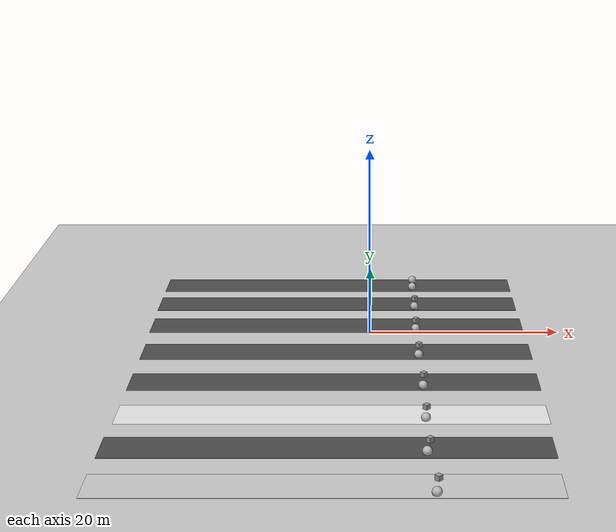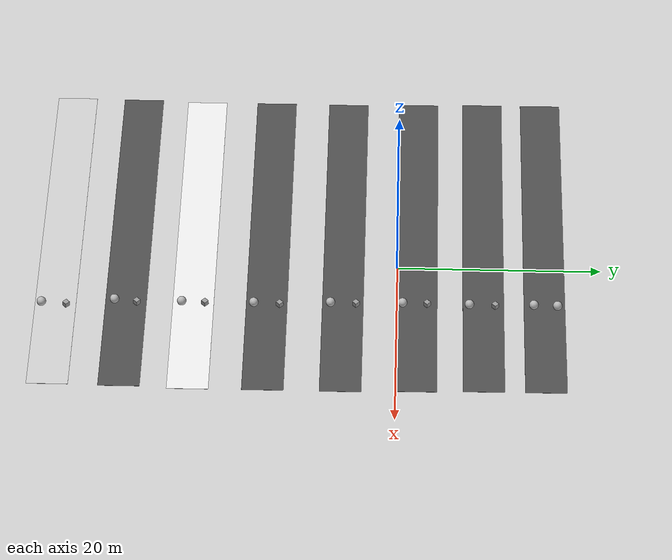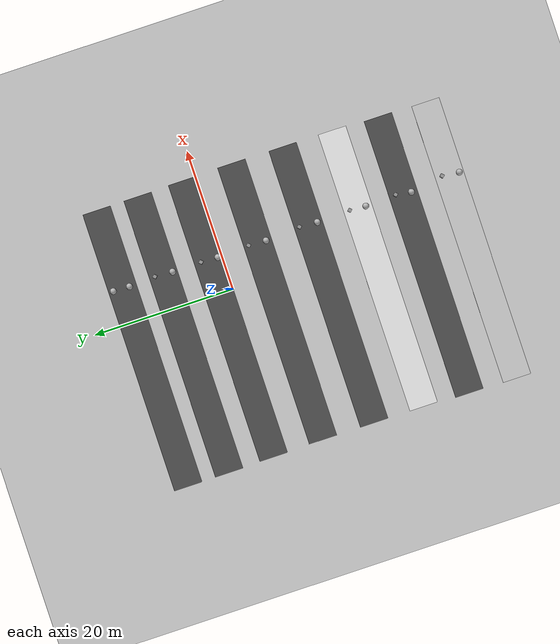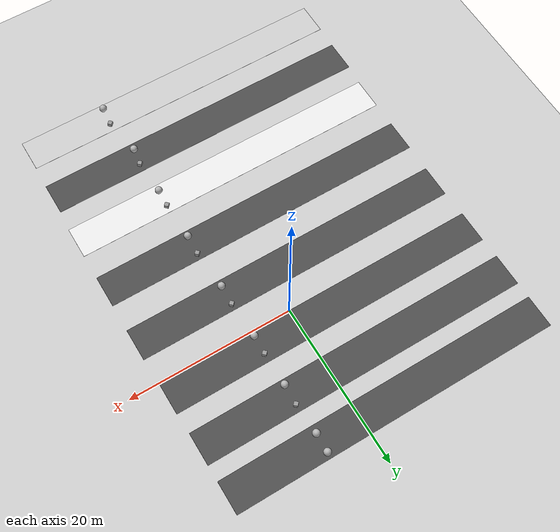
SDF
<sdf version="1.6">
 <world name="default">
  <light name="sun" type="directional">
   <pose>0 0 10 0 -0 0</pose>
   <diffuse>0.8 0.8 0.8 1</diffuse>
   <specular>0.2 0.2 0.2 1</specular>
   <attenuation>
    <range>1000</range>
    <constant>0.9</constant>
    <linear>0.01</linear>
    <quadratic>0.001</quadratic>
   </attenuation>
   <direction>-0.5 0.1 -0.9</direction>
  </light>
  <model name="ground_plane">
   <static>1</static>
   <link name="link">
    <collision name="collision">
     <geometry><plane><normal>0 0 1</normal><size>100 100</size></plane></geometry>
     <surface>
      <contact><collide_bitmask>65535</collide_bitmask></contact>
      <friction><ode><mu>100</mu><mu2>50</mu2></ode></friction>
     </surface>
    </collision>
    <visual name="visual">
     <cast_shadows>0</cast_shadows>
     <geometry><plane><normal>0 0 1</normal><size>100 100</size></plane></geometry>
     <material>
      <script><uri>file://media/materials/scripts/gazebo.material</uri><name>Gazebo/Grey</name></script>
     </material>
    </visual>
   </link>
  </model>
  <gravity>0 0 -9.8</gravity>
  <magnetic_field>6e-06 2.3e-05 -4.2e-05</magnetic_field>
  <atmosphere type="adiabatic"/>
  <physics name="default_physics" default="0" type="ode">
   <max_step_size>0.001</max_step_size>
   <real_time_factor>1</real_time_factor>
   <real_time_update_rate>1000</real_time_update_rate>
  </physics>
  <scene><ambient>0.4 0.4 0.4 1</ambient><background>0.7 0.7 0.7 1</background><shadows>1</shadows></scene>
  <spherical_coordinates>
   <surface_model>EARTH_WGS84</surface_model>
   <latitude_deg>0</latitude_deg>
   <longitude_deg>0</longitude_deg>
   <elevation>0</elevation>
   <heading_deg>0</heading_deg>
  </spherical_coordinates>
  <model name="road_dashed_two_white">
   <static>1</static>
   <link name="link">
    <collision name="collision"><geometry><box><size>40 4 0.02</size></box></geometry></collision>
    <visual name="visual">
     <cast_shadows>0</cast_shadows>
     <geometry><box><size>40 4 0.02</size></box></geometry>
     <material>
      <script>
       <uri>model://road_dashed_two_white/materials/scripts</uri>
       <uri>model://road_dashed_two_white/materials/textures</uri>
       <name>DashedTwoWhite</name>
      </script>
     </material>
    </visual>
   </link>
   <pose>-3.50925 -19.7999 0 0 -0 0</pose>
  </model>
  <model name="road_plain_white">
   <static>1</static>
   <link name="link">
    <collision name="collision"><geometry><box><size>40 4 0.02</size></box></geometry></collision>
    <visual name="visual">
     <cast_shadows>0</cast_shadows>
     <geometry><box><size>40 4 0.02</size></box></geometry>
     <material>
      <ambient>0.8 0.8 0.8 1</ambient>
      <diffuse>0.8 0.8 0.8 1</diffuse>
      <specular>0.1 0.1 0.1 1</specular>
      <emissive>0 0 0 0</emissive>
     </material>
    </visual>
   </link>
   <pose>-3.86037 -33.2192 0 0 -0 0</pose>
  </model>
  <model name="dirt_road">
   <static>1</static>
   <link name="link">
    <collision name="collision"><geometry><box><size>40 4 0.02</size></box></geometry></collision>
    <visual name="visual">
     <cast_shadows>0</cast_shadows>
     <geometry><box><size>40 4 0.02</size></box></geometry>
     <material>
      <script>
       <uri>model://two_stripe_road/materials/scripts</uri>
       <uri>model://two_stripe_road/materials/textures</uri>
       <name>TwoStripeRoad</name>
      </script>
     </material>
    </visual>
   </link>
   <pose>-3.74816 -26.3668 0 0 -0 0</pose>
  </model>
  <model name="road_light_gravel">
   <static>1</static>
   <link name="link">
    <collision name="collision"><geometry><box><size>40 4 0.02</size></box></geometry></collision>
    <visual name="visual">
     <cast_shadows>0</cast_shadows>
     <geometry><box><size>40 4 0.02</size></box></geometry>
     <material>
      <script>
       <uri>model://road_light_gravel/materials/scripts</uri>
       <uri>model://road_light_gravel/materials/textures</uri>
       <name>RoadLightGravel</name>
      </script>
     </material>
    </visual>
   </link>
   <pose>-3.61059 1.9679 0 0 -0 0</pose>
  </model>
  <model name="road_light_grid">
   <static>1</static>
   <link name="link">
    <collision name="collision"><geometry><box><size>40 4 0.02</size></box></geometry></collision>
    <visual name="visual">
     <cast_shadows>0</cast_shadows>
     <geometry><box><size>40 4 0.02</size></box></geometry>
     <material>
      <script>
       <uri>model://road_light_grid/materials/scripts</uri>
       <uri>model://road_light_grid/materials/textures</uri>
       <name>RoadLightGrid</name>
      </script>
     </material>
    </visual>
   </link>
   <pose>-3.51066 -12.6398 0 0 -0 0</pose>
  </model>
  <model name="road_light_tile">
   <static>1</static>
   <link name="link">
    <collision name="collision"><geometry><box><size>40 4 0.02</size></box></geometry></collision>
    <visual name="visual">
     <cast_shadows>0</cast_shadows>
     <geometry><box><size>40 4 0.02</size></box></geometry>
     <material>
      <script>
       <uri>model://road_light_tile/materials/scripts</uri>
       <uri>model://road_light_tile/materials/textures</uri>
       <name>RoadLightTile</name>
      </script>
     </material>
    </visual>
   </link>
   <pose>-3.47752 -5.22727 0 0 -0 0</pose>
  </model>
  <model name="road_aged_tile">
   <static>1</static>
   <link name="link">
    <collision name="collision"><geometry><box><size>40 4 0.02</size></box></geometry></collision>
    <visual name="visual">
     <cast_shadows>0</cast_shadows>
     <geometry><box><size>40 4 0.02</size></box></geometry>
     <material>
      <script>
       <uri>model://road_aged_tile/materials/scripts</uri>
       <uri>model://road_aged_tile/materials/textures</uri>
       <name>RoadAgedTile</name>
      </script>
     </material>
    </visual>
   </link>
   <pose>-3.72583 8.4555 0 0 -0 0</pose>
  </model>
  <model name="road_illusion_slab">
   <static>1</static>
   <link name="link">
    <collision name="collision"><geometry><box><size>40 4 0.02</size></box></geometry></collision>
    <visual name="visual">
     <cast_shadows>0</cast_shadows>
     <geometry><box><size>40 4 0.02</size></box></geometry>
     <material>
      <script>
       <uri>model://road_illusion_slab/materials/scripts</uri>
       <uri>model://road_illusion_slab/materials/textures</uri>
       <name>IllusionSlabRoad</name>
      </script>
     </material>
    </visual>
   </link>
   <pose>-3.7402 14.4033 0 0 -0 0</pose>
  </model>
  <model name="unit_box">
   <pose>4.88648 13.3779 0.26 0 -0 3e-06</pose>
   <link name="link">
    <inertial>
     <mass>1</mass>
     <inertia>
      <ixx>0.166667</ixx>
      <ixy>0</ixy>
      <ixz>0</ixz>
      <iyy>0.166667</iyy>
      <iyz>0</iyz>
      <izz>0.166667</izz>
     </inertia>
    </inertial>
    <collision name="collision"><geometry><box><size>0.5 0.5 0.5</size></box></geometry></collision>
    <visual name="visual">
     <geometry><box><size>0.5 0.5 0.5</size></box></geometry>
     <material>
      <script><name>Gazebo/Grey</name><uri>file://media/materials/scripts/gazebo.material</uri></script>
     </material>
    </visual>
    <visual name="visual_sphere_cue">
     <geometry><sphere><radius>0.45</radius></sphere></geometry>
     <plugin name="blink" filename="libBlinkVisualPlugin.so">
      <color_a>0 1 0 0.15</color_a>
      <color_b>0 1 0 0.15</color_b>
      <period>2</period>
      <use_wall_time>true</use_wall_time>
     </plugin>
     <material>
      <script><uri>file://media/materials/scripts/gazebo.material</uri><name>__default__</name></script>
     </material>
    </visual>
   </link>
  </model>
  <model name="unit_box_clone">
   <pose>4.94404 7.10779 0.26 0 -0 3e-06</pose>
   <link name="link">
    <inertial>
     <mass>1</mass>
     <inertia>
      <ixx>0.166667</ixx>
      <ixy>0</ixy>
      <ixz>0</ixz>
      <iyy>0.166667</iyy>
      <iyz>0</iyz>
      <izz>0.166667</izz>
     </inertia>
    </inertial>
    <collision name="collision"><geometry><box><size>0.5 0.5 0.5</size></box></geometry></collision>
    <visual name="visual">
     <geometry><box><size>0.5 0.5 0.5</size></box></geometry>
     <material>
      <script><name>Gazebo/Grey</name><uri>file://media/materials/scripts/gazebo.material</uri></script>
     </material>
    </visual>
    <visual name="visual_sphere_cue">
     <geometry><sphere><radius>0.45</radius></sphere></geometry>
     <plugin name="blink" filename="libBlinkVisualPlugin.so">
      <color_a>0 1 0 0.15</color_a>
      <color_b>0 1 0 0.15</color_b>
      <period>2</period>
      <use_wall_time>true</use_wall_time>
     </plugin>
     <material>
      <script><uri>file://media/materials/scripts/gazebo.material</uri><name>__default__</name></script>
     </material>
    </visual>
   </link>
  </model>
  <model name="unit_box_clone_0">
   <pose>4.87138 0.600374 0.26 0 -0 3e-06</pose>
   <link name="link">
    <inertial>
     <mass>1</mass>
     <inertia>
      <ixx>0.166667</ixx>
      <ixy>0</ixy>
      <ixz>0</ixz>
      <iyy>0.166667</iyy>
      <iyz>0</iyz>
      <izz>0.166667</izz>
     </inertia>
    </inertial>
    <collision name="collision"><geometry><box><size>0.5 0.5 0.5</size></box></geometry></collision>
    <visual name="visual">
     <geometry><box><size>0.5 0.5 0.5</size></box></geometry>
     <material>
      <script><name>Gazebo/Grey</name><uri>file://media/materials/scripts/gazebo.material</uri></script>
     </material>
    </visual>
    <visual name="visual_sphere_cue">
     <geometry><sphere><radius>0.45</radius></sphere></geometry>
     <plugin name="blink" filename="libBlinkVisualPlugin.so">
      <color_a>0 1 0 0.15</color_a>
      <color_b>0 1 0 0.15</color_b>
      <period>2</period>
      <use_wall_time>true</use_wall_time>
     </plugin>
     <material>
      <script><uri>file://media/materials/scripts/gazebo.material</uri><name>__default__</name></script>
     </material>
    </visual>
   </link>
  </model>
  <model name="unit_box_clone_1">
   <pose>4.96317 -6.43065 0.26 0 -0 3e-06</pose>
   <link name="link">
    <inertial>
     <mass>1</mass>
     <inertia>
      <ixx>0.166667</ixx>
      <ixy>0</ixy>
      <ixz>0</ixz>
      <iyy>0.166667</iyy>
      <iyz>0</iyz>
      <izz>0.166667</izz>
     </inertia>
    </inertial>
    <collision name="collision"><geometry><box><size>0.5 0.5 0.5</size></box></geometry></collision>
    <visual name="visual">
     <geometry><box><size>0.5 0.5 0.5</size></box></geometry>
     <material>
      <script><name>Gazebo/Grey</name><uri>file://media/materials/scripts/gazebo.material</uri></script>
     </material>
    </visual>
    <visual name="visual_sphere_cue">
     <geometry><sphere><radius>0.45</radius></sphere></geometry>
     <plugin name="blink" filename="libBlinkVisualPlugin.so">
      <color_a>0 1 0 0.15</color_a>
      <color_b>0 1 0 0.15</color_b>
      <period>2</period>
      <use_wall_time>true</use_wall_time>
     </plugin>
     <material>
      <script><uri>file://media/materials/scripts/gazebo.material</uri><name>__default__</name></script>
     </material>
    </visual>
   </link>
  </model>
  <model name="unit_box_clone_2">
   <pose>5.13767 -13.9041 0.26 0 -0 3e-06</pose>
   <link name="link">
    <inertial>
     <mass>1</mass>
     <inertia>
      <ixx>0.166667</ixx>
      <ixy>0</ixy>
      <ixz>0</ixz>
      <iyy>0.166667</iyy>
      <iyz>0</iyz>
      <izz>0.166667</izz>
     </inertia>
    </inertial>
    <collision name="collision"><geometry><box><size>0.5 0.5 0.5</size></box></geometry></collision>
    <visual name="visual">
     <geometry><box><size>0.5 0.5 0.5</size></box></geometry>
     <material>
      <script><name>Gazebo/Grey</name><uri>file://media/materials/scripts/gazebo.material</uri></script>
     </material>
    </visual>
    <visual name="visual_sphere_cue">
     <geometry><sphere><radius>0.45</radius></sphere></geometry>
     <plugin name="blink" filename="libBlinkVisualPlugin.so">
      <color_a>0 1 0 0.15</color_a>
      <color_b>0 1 0 0.15</color_b>
      <period>2</period>
      <use_wall_time>true</use_wall_time>
     </plugin>
     <material>
      <script><uri>file://media/materials/scripts/gazebo.material</uri><name>__default__</name></script>
     </material>
    </visual>
   </link>
  </model>
  <model name="unit_box_clone_3">
   <pose>5.12838 -20.923 0.26 0 -0 3e-06</pose>
   <link name="link">
    <inertial>
     <mass>1</mass>
     <inertia>
      <ixx>0.166667</ixx>
      <ixy>0</ixy>
      <ixz>0</ixz>
      <iyy>0.166667</iyy>
      <iyz>0</iyz>
      <izz>0.166667</izz>
     </inertia>
    </inertial>
    <collision name="collision"><geometry><box><size>0.5 0.5 0.5</size></box></geometry></collision>
    <visual name="visual">
     <geometry><box><size>0.5 0.5 0.5</size></box></geometry>
     <material>
      <script><name>Gazebo/Grey</name><uri>file://media/materials/scripts/gazebo.material</uri></script>
     </material>
    </visual>
    <visual name="visual_sphere_cue">
     <geometry><sphere><radius>0.45</radius></sphere></geometry>
     <plugin name="blink" filename="libBlinkVisualPlugin.so">
      <color_a>0 1 0 0.15</color_a>
      <color_b>0 1 0 0.15</color_b>
      <period>2</period>
      <use_wall_time>true</use_wall_time>
     </plugin>
     <material>
      <script><uri>file://media/materials/scripts/gazebo.material</uri><name>__default__</name></script>
     </material>
    </visual>
   </link>
  </model>
  <model name="unit_box_clone_4">
   <pose>4.98944 -27.4875 0.26 0 -0 3e-06</pose>
   <link name="link">
    <inertial>
     <mass>1</mass>
     <inertia>
      <ixx>0.166667</ixx>
      <ixy>0</ixy>
      <ixz>0</ixz>
      <iyy>0.166667</iyy>
      <iyz>0</iyz>
      <izz>0.166667</izz>
     </inertia>
    </inertial>
    <collision name="collision"><geometry><box><size>0.5 0.5 0.5</size></box></geometry></collision>
    <visual name="visual">
     <geometry><box><size>0.5 0.5 0.5</size></box></geometry>
     <material>
      <script><name>Gazebo/Grey</name><uri>file://media/materials/scripts/gazebo.material</uri></script>
     </material>
    </visual>
    <visual name="visual_sphere_cue">
     <geometry><sphere><radius>0.45</radius></sphere></geometry>
     <plugin name="blink" filename="libBlinkVisualPlugin.so">
      <color_a>0 1 0 0.15</color_a>
      <color_b>0 1 0 0.15</color_b>
      <period>2</period>
      <use_wall_time>true</use_wall_time>
     </plugin>
     <material>
      <script><uri>file://media/materials/scripts/gazebo.material</uri><name>__default__</name></script>
     </material>
    </visual>
   </link>
  </model>
  <model name="unit_box_clone_5">
   <pose>5.49429 -34.5866 0.26 0 -0 3e-06</pose>
   <link name="link">
    <inertial>
     <mass>1</mass>
     <inertia>
      <ixx>0.166667</ixx>
      <ixy>0</ixy>
      <ixz>0</ixz>
      <iyy>0.166667</iyy>
      <iyz>0</iyz>
      <izz>0.166667</izz>
     </inertia>
    </inertial>
    <collision name="collision"><geometry><box><size>0.5 0.5 0.5</size></box></geometry></collision>
    <visual name="visual">
     <geometry><box><size>0.5 0.5 0.5</size></box></geometry>
     <material>
      <script><name>Gazebo/Grey</name><uri>file://media/materials/scripts/gazebo.material</uri></script>
     </material>
    </visual>
    <visual name="visual_sphere_cue">
     <geometry><sphere><radius>0.45</radius></sphere></geometry>
     <plugin name="blink" filename="libBlinkVisualPlugin.so">
      <color_a>0 1 0 0.15</color_a>
      <color_b>0 1 0 0.15</color_b>
      <period>2</period>
      <use_wall_time>true</use_wall_time>
     </plugin>
     <material>
      <script><uri>file://media/materials/scripts/gazebo.material</uri><name>__default__</name></script>
     </material>
    </visual>
   </link>
  </model>
  <model name="unit_box_evil">
   <pose>5.74966 -32.1601 0.26 0 0 -0.801147</pose>
   <link name="link">
    <inertial>
     <mass>1</mass>
     <inertia>
      <ixx>0.166667</ixx>
      <ixy>0</ixy>
      <ixz>0</ixz>
      <iyy>0.166667</iyy>
      <iyz>0</iyz>
      <izz>0.166667</izz>
     </inertia>
    </inertial>
    <collision name="collision"><geometry><box><size>0.5 0.5 0.5</size></box></geometry></collision>
    <visual name="visual">
     <geometry><box><size>0.5 0.5 0.5</size></box></geometry>
     <material>
      <script><name>Gazebo/Grey</name><uri>file://media/materials/scripts/gazebo.material</uri></script>
     </material>
    </visual>
   </link>
   <plugin name="model_push" filename="libvisual_cue_plugin.so"/>
  </model>
  <model name="unit_box_clone_6">
   <pose>4.96093 15.6812 0.26 0 0 -0.788595</pose>
   <link name="link">
    <inertial>
     <mass>1</mass>
     <inertia>
      <ixx>0.166667</ixx>
      <ixy>0</ixy>
      <ixz>0</ixz>
      <iyy>0.166667</iyy>
      <iyz>0</iyz>
      <izz>0.166667</izz>
     </inertia>
    </inertial>
    <collision name="collision"><geometry><box><size>0.5 0.5 0.5</size></box></geometry></collision>
    <visual name="visual">
     <geometry><box><size>0.5 0.5 0.5</size></box></geometry>
     <material>
      <script><name>Gazebo/Grey</name><uri>file://media/materials/scripts/gazebo.material</uri></script>
     </material>
    </visual>
    <visual name="visual_sphere_cue">
     <geometry><sphere><radius>0.45</radius></sphere></geometry>
     <plugin name="blink" filename="libBlinkVisualPlugin.so">
      <color_a>0 1 0 0.15</color_a>
      <color_b>0 1 0 0.15</color_b>
      <period>2</period>
      <use_wall_time>true</use_wall_time>
     </plugin>
     <material>
      <script><uri>file://media/materials/scripts/gazebo.material</uri><name>__default__</name></script>
     </material>
    </visual>
   </link>
  </model>
  <model name="unit_box_evil_">
   <pose>5.0678 9.61365 0.26 0 0 -0.7886</pose>
   <link name="link">
    <inertial>
     <mass>1</mass>
     <inertia>
      <ixx>0.166667</ixx>
      <ixy>0</ixy>
      <ixz>0</ixz>
      <iyy>0.166667</iyy>
      <iyz>0</iyz>
      <izz>0.166667</izz>
     </inertia>
    </inertial>
    <collision name="collision"><geometry><box><size>0.5 0.5 0.5</size></box></geometry></collision>
    <visual name="visual">
     <geometry><box><size>0.5 0.5 0.5</size></box></geometry>
     <material>
      <script><name>Gazebo/Grey</name><uri>file://media/materials/scripts/gazebo.material</uri></script>
     </material>
    </visual>
   </link>
   <plugin name="model_push" filename="libvisual_cue_plugin.so"/>
  </model>
  <model name="unit_box_evil__0">
   <pose>4.96728 2.97767 0.26 0 0 -0.788596</pose>
   <link name="link">
    <inertial>
     <mass>1</mass>
     <inertia>
      <ixx>0.166667</ixx>
      <ixy>0</ixy>
      <ixz>0</ixz>
      <iyy>0.166667</iyy>
      <iyz>0</iyz>
      <izz>0.166667</izz>
     </inertia>
    </inertial>
    <collision name="collision"><geometry><box><size>0.5 0.5 0.5</size></box></geometry></collision>
    <visual name="visual">
     <geometry><box><size>0.5 0.5 0.5</size></box></geometry>
     <material>
      <script><name>Gazebo/Grey</name><uri>file://media/materials/scripts/gazebo.material</uri></script>
     </material>
    </visual>
   </link>
   <plugin name="model_push" filename="libvisual_cue_plugin.so"/>
  </model>
  <model name="unit_box_evil__1">
   <pose>5.08083 -3.94841 0.26 0 0 -0.788597</pose>
   <link name="link">
    <inertial>
     <mass>1</mass>
     <inertia>
      <ixx>0.166667</ixx>
      <ixy>0</ixy>
      <ixz>0</ixz>
      <iyy>0.166667</iyy>
      <iyz>0</iyz>
      <izz>0.166667</izz>
     </inertia>
    </inertial>
    <collision name="collision"><geometry><box><size>0.5 0.5 0.5</size></box></geometry></collision>
    <visual name="visual">
     <geometry><box><size>0.5 0.5 0.5</size></box></geometry>
     <material>
      <script><name>Gazebo/Grey</name><uri>file://media/materials/scripts/gazebo.material</uri></script>
     </material>
    </visual>
   </link>
   <plugin name="model_push" filename="libvisual_cue_plugin.so"/>
  </model>
  <model name="unit_box_evil__2">
   <pose>5.29708 -11.375 0.26 0 0 -0.788595</pose>
   <link name="link">
    <inertial>
     <mass>1</mass>
     <inertia>
      <ixx>0.166667</ixx>
      <ixy>0</ixy>
      <ixz>0</ixz>
      <iyy>0.166667</iyy>
      <iyz>0</iyz>
      <izz>0.166667</izz>
     </inertia>
    </inertial>
    <collision name="collision"><geometry><box><size>0.5 0.5 0.5</size></box></geometry></collision>
    <visual name="visual">
     <geometry><box><size>0.5 0.5 0.5</size></box></geometry>
     <material>
      <script><name>Gazebo/Grey</name><uri>file://media/materials/scripts/gazebo.material</uri></script>
     </material>
    </visual>
   </link>
   <plugin name="model_push" filename="libvisual_cue_plugin.so"/>
  </model>
  <model name="unit_box_evil__3">
   <pose>5.28266 -18.6534 0.26 0 0 -0.788595</pose>
   <link name="link">
    <inertial>
     <mass>1</mass>
     <inertia>
      <ixx>0.166667</ixx>
      <ixy>0</ixy>
      <ixz>0</ixz>
      <iyy>0.166667</iyy>
      <iyz>0</iyz>
      <izz>0.166667</izz>
     </inertia>
    </inertial>
    <collision name="collision"><geometry><box><size>0.5 0.5 0.5</size></box></geometry></collision>
    <visual name="visual">
     <geometry><box><size>0.5 0.5 0.5</size></box></geometry>
     <material>
      <script><name>Gazebo/Grey</name><uri>file://media/materials/scripts/gazebo.material</uri></script>
     </material>
    </visual>
   </link>
   <plugin name="model_push" filename="libvisual_cue_plugin.so"/>
  </model>
  <model name="unit_box_evil__4">
   <pose>5.3249 -25.2939 0.26 0 0 -0.788596</pose>
   <link name="link">
    <inertial>
     <mass>1</mass>
     <inertia>
      <ixx>0.166667</ixx>
      <ixy>0</ixy>
      <ixz>0</ixz>
      <iyy>0.166667</iyy>
      <iyz>0</iyz>
      <izz>0.166667</izz>
     </inertia>
    </inertial>
    <collision name="collision"><geometry><box><size>0.5 0.5 0.5</size></box></geometry></collision>
    <visual name="visual">
     <geometry><box><size>0.5 0.5 0.5</size></box></geometry>
     <material>
      <script><name>Gazebo/Grey</name><uri>file://media/materials/scripts/gazebo.material</uri></script>
     </material>
    </visual>
   </link>
   <plugin name="model_push" filename="libvisual_cue_plugin.so"/>
  </model>
 </world>
</sdf>
